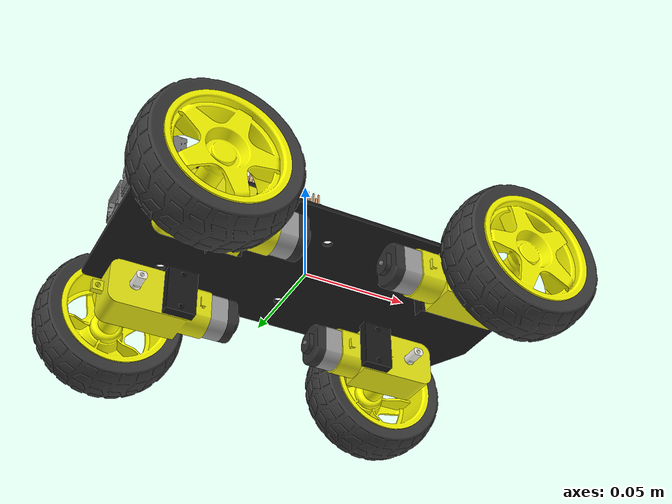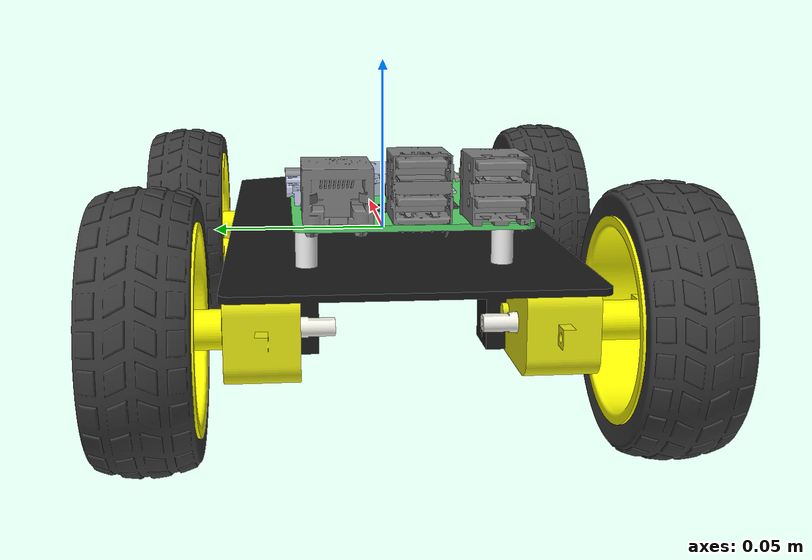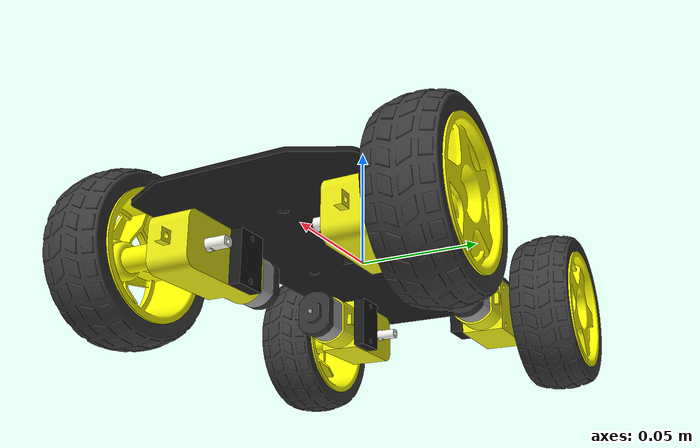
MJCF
<!-- Generated using Fusion2Mujoco v1.0 -->
<!-- https://github.com/jgillick/Fusion2Mujoco -->
<mujoco model="Freenove4WD">
    <compiler angle="radian" />
    <default>
        <mesh scale="0.001 0.001 0.001" />
        <geom contype="0" conaffinity="0" group="2" />
        <default class="collision">
            <geom contype="1" conaffinity="1" group="3" pos="0 0 0" mass="0.0" />
        </default>
    </default>
    <custom>
        <numeric name="ground_offset" data="0.0457855" />
    </custom>
    <asset>
        <mesh name="MainPCB_visual" file="meshes/MainPCB/visual.stl" />
        <mesh name="MainPCB_collision00" file="meshes/MainPCB/collision00.stl" />
        <mesh name="motor_visual" file="meshes/motor/visual.stl" />
        <mesh name="gearbox_visual" file="meshes/gearbox/visual.stl" />
        <mesh name="gearbox_collision00" file="meshes/gearbox/collision00.stl" />
        <mesh name="motor_bottom_visual" file="meshes/motor_bottom/visual.stl" />
        <mesh name="axel_visual" file="meshes/axel/visual.stl" />
        <mesh name="tire_visual" file="meshes/tire/visual.stl" />
        <mesh name="tire_collision00" file="meshes/tire/collision00.stl" />
        <mesh name="tire_collision01" file="meshes/tire/collision01.stl" />
        <mesh name="tire_collision02" file="meshes/tire/collision02.stl" />
        <mesh name="tire_collision03" file="meshes/tire/collision03.stl" />
        <mesh name="wheel_hub_visual" file="meshes/wheel_hub/visual.stl" />
        <mesh name="wheel_hub_collision00" file="meshes/wheel_hub/collision00.stl" />
        <mesh name="PiSpacers_visual" file="meshes/PiSpacers/visual.stl" />
        <mesh name="servo_visual" file="meshes/servo/visual.stl" />
        <mesh name="baseplate_visual" file="meshes/baseplate/visual.stl" />
        <mesh name="vertical_plate_visual" file="meshes/vertical_plate/visual.stl" />
        <mesh name="horizontal_plate_visual" file="meshes/horizontal_plate/visual.stl" />
        <mesh name="camera_visual" file="meshes/camera/visual.stl" />
        <mesh name="Ultrasonic_HC-SR04_PCB_visual" file="meshes/Ultrasonic_HC-SR04_PCB/visual.stl" />
        <mesh name="Ultrasonic_Can_visual" file="meshes/Ultrasonic_Can/visual.stl" />
        <mesh name="servo_horn_visual" file="meshes/servo_horn/visual.stl" />
        <mesh name="headplate_rear_visual" file="meshes/headplate_rear/visual.stl" />
        <mesh name="headplate_front_visual" file="meshes/headplate_front/visual.stl" />
        <mesh name="headplate_front_collision00" file="meshes/headplate_front/collision00.stl" />
        <mesh name="servo2_holder_visual" file="meshes/servo2_holder/visual.stl" />
        <mesh name="headplate_spacer_visual" file="meshes/headplate_spacer/visual.stl" />
        <mesh name="PLATE_RASPBERRY_PI_5_visual" file="meshes/PLATE_RASPBERRY_PI_5/visual.stl" />
        <mesh name="METAL_PLATE._visual" file="meshes/METAL_PLATE./visual.stl" />
        <mesh name="USB_Ethernet_visual" file="meshes/USB_Ethernet/visual.stl" />
        <mesh name="FEMALE_MICRO_HDMI_CONNECTOR_visual" file="meshes/FEMALE_MICRO_HDMI_CONNECTOR/visual.stl" />
        <mesh name="FEMALE_USB_CONNECTOR_visual" file="meshes/FEMALE_USB_CONNECTOR/visual.stl" />
        <mesh name="3.0_PIN_HEADER_10_visual" file="meshes/3.0_PIN_HEADER_10/visual.stl" />
        <mesh name="9FD77_D9WHV_visual" file="meshes/9FD77_D9WHV/visual.stl" />
        <mesh name="GIGABIT_ETHERNET_TRANSCEIVER_visual" file="meshes/GIGABIT_ETHERNET_TRANSCEIVER/visual.stl" />
        <mesh name="RP1_CO_CONTROLLER_visual" file="meshes/RP1_CO_CONTROLLER/visual.stl" />
        <mesh name="BROADCOM_1_visual" file="meshes/BROADCOM_1/visual.stl" />
        <mesh name="MxL_visual" file="meshes/MxL/visual.stl" />
        <mesh name="CAMERA_DISPLAY_1_visual" file="meshes/CAMERA_DISPLAY_1/visual.stl" />
        <mesh name="BUTTON_2_visual" file="meshes/BUTTON_2/visual.stl" />
        <mesh name="CAMERA_DISPLAY_2_visual" file="meshes/CAMERA_DISPLAY_2/visual.stl" />
        <material name="MainPCB_mat" rgba="0.0980 0.0980 0.0980 1.0000" roughness="0.7071" />
        <material name="motor_mat" rgba="0.6275 0.6275 0.6275 1.0000" roughness="0.2000" />
        <material name="gearbox_mat" rgba="0.9137 0.9137 0.0706 1.0000" roughness="0.2000" />
        <material name="motor_bottom_mat" rgba="0.1961 0.1961 0.1961 1.0000" roughness="0.2000" />
        <material name="axel_mat" rgba="0.9725 0.9686 0.9294 1.0000" roughness="0.2000" />
        <material name="tire_mat" rgba="0.2275 0.2275 0.2275 1.0000" roughness="0.2000" />
        <material name="wheel_hub_mat" rgba="1.0000 1.0000 0.0000 1.0000" roughness="0.2000" />
        <material name="PiSpacers_mat" rgba="0.9608 0.9608 0.9647 1.0000" roughness="0.2646" />
        <material name="servo_mat" rgba="0.0039 0.0980 0.5765 1.0000" roughness="0.2646" />
        <material name="baseplate_mat" rgba="0.0000 0.0000 0.0000 1.0000" roughness="0.2646" />
        <material name="vertical_plate_mat" rgba="0.0000 0.0000 0.0000 1.0000" roughness="0.2646" />
        <material name="horizontal_plate_mat" rgba="0.0000 0.0000 0.0000 1.0000" roughness="0.2646" />
        <material name="camera_mat" rgba="0.1804 0.3451 0.1333 1.0000" roughness="0.2646" />
        <material name="Ultrasonic_HC-SR04_PCB_mat" rgba="0.0039 0.0980 0.5765 1.0000" roughness="0.2646" />
        <material name="Ultrasonic_Can_mat" rgba="0.6275 0.6275 0.6275 1.0000" roughness="0.2646" />
        <material name="servo_horn_mat" rgba="0.6275 0.6275 0.6275 1.0000" roughness="0.2646" />
        <material name="headplate_rear_mat" rgba="0.0000 0.0000 0.0000 1.0000" roughness="0.2646" />
        <material name="headplate_front_mat" rgba="0.0000 0.0000 0.0000 1.0000" roughness="0.2646" />
        <material name="servo2_holder_mat" rgba="0.0000 0.0000 0.0000 1.0000" roughness="0.2646" />
        <material name="headplate_spacer_mat" rgba="0.6275 0.6275 0.6275 1.0000" roughness="0.2646" />
        <material name="PLATE_RASPBERRY_PI_5_mat" rgba="0.3412 0.8392 0.4118 1.0000" roughness="0.2000" />
        <material name="METAL_PLATE._mat" rgba="0.6431 0.6157 0.6000 1.0000" roughness="0.2000" />
        <material name="USB_Ethernet_mat" rgba="0.4980 0.4980 0.4980 1.0000" roughness="0.2000" />
        <material name="FEMALE_MICRO_HDMI_CONNECTOR_mat" rgba="0.7922 0.8196 0.9333 1.0000" roughness="0.2000" />
        <material name="FEMALE_USB_CONNECTOR_mat" rgba="0.5686 0.5686 0.5882 1.0000" roughness="0.2000" />
        <material name="3.0_PIN_HEADER_10_mat" rgba="1.0000 0.7569 0.5647 1.0000" roughness="0.2000" />
        <material name="9FD77_D9WHV_mat" rgba="0.7922 0.8196 0.9333 1.0000" roughness="0.2000" />
        <material name="GIGABIT_ETHERNET_TRANSCEIVER_mat" rgba="0.2980 0.2980 0.2980 1.0000" roughness="0.2000" />
        <material name="RP1_CO_CONTROLLER_mat" rgba="0.2980 0.2980 0.2980 1.0000" roughness="0.2000" />
        <material name="BROADCOM_1_mat" rgba="0.6667 0.6980 0.7686 1.0000" roughness="0.2000" />
        <material name="MxL_mat" rgba="0.7922 0.8196 0.9333 1.0000" roughness="0.2000" />
        <material name="CAMERA_DISPLAY_1_mat" rgba="0.7922 0.8196 0.9333 1.0000" roughness="0.2000" />
        <material name="BUTTON_2_mat" rgba="0.2980 0.2980 0.2980 1.0000" roughness="0.2000" />
        <material name="CAMERA_DISPLAY_2_mat" rgba="0.7922 0.8196 0.9333 1.0000" roughness="0.2000" />
    </asset>
    <worldbody>
        <!-- Lowest point of the model is at z = -0.0457855m in this frame. -->
        <!-- Lift the model by 0.0457855m to rest it on a z=0 ground plane. -->
        <body name="MainPCB" pos="0.0 0.0 0.0" quat="1.0 0.0 0.0 0.0">
            <freejoint />
            <geom mesh="MainPCB_visual" name="MainPCB_MainPCB_visual_geom" type="mesh" pos="0 0 0" quat="1 0 0 0" material="MainPCB_mat" />
            <geom mesh="MainPCB_collision00" name="MainPCB_MainPCB_collision00_geom" type="mesh" pos="0 0 0" quat="1 0 0 0" class="collision" />
            <inertial mass="0.04969745696436134" pos="0.003940462596438171 4.8292006786886e-16 -0.0011763349216851915" fullinertia="3.3674045969796535e-05 0.0001465633094517653 0.00017757150983492432 1.42267499867892e-18 -3.968191338793067e-07 -4.792103110425506e-20" />
            <body name="TT_Motor-1_gearbox" pos="0.06975000000000005 -0.035500000000000004 -0.010750000000000004" quat="1.1102230246251482e-16 6.123233995736757e-17 -6.798155367234502e-33 1.0000000000000004">
                <geom mesh="gearbox_visual" name="TT_Motor-1_gearbox_gearbox_visual_geom" type="mesh" pos="0 0 0" quat="1 0 0 0" material="gearbox_mat" />
                <geom mesh="gearbox_collision00" name="TT_Motor-1_gearbox_gearbox_collision00_geom" type="mesh" pos="0 0 0" quat="1 0 0 0" class="collision" />
                <inertial mass="0.01575778898400723" pos="0.007647838045918707 1.2362785200822959e-05 1.2838560109171476e-18" fullinertia="1.1035802615155104e-06 2.7495869785205253e-06 2.517636816068929e-06 -6.530352080899404e-10 1.8672378778433224e-21 8.471129210020342e-22" />
                <body name="TT_Motor-1_motor" pos="0.0 0.0 0.0" quat="1.0 -1.1588236309358302e-48 0.0 -2.0198403645931934e-45">
                    <geom mesh="motor_visual" name="TT_Motor-1_motor_motor_visual_geom" type="mesh" pos="0 0 0" quat="1 0 0 0" material="motor_mat" />
                    <inertial mass="0.002505457365802741" pos="0.040581087769524064 7.106717631643122e-16 -5.288578257858985e-19" fullinertia="1.1337249067247854e-07 8.727071603245999e-08 6.066235498198957e-08 -2.0322994975865508e-20 -6.455129895597942e-24 2.4888490746281334e-36" />
                    <body name="TT_Motor-1_motor_bottom" pos="0.0 0.0 0.0" quat="1.0 -1.1588236309358302e-48 0.0 -2.0198403645931934e-45">
                        <geom mesh="motor_bottom_visual" name="TT_Motor-1_motor_bottom_motor_bottom_visual_geom" type="mesh" pos="0 0 0" quat="1 0 0 0" material="motor_bottom_mat" />
                        <inertial mass="0.0014785534866922744" pos="0.04737679915861434 -2.610931162777616e-05 8.593536034065558e-19" fullinertia="6.115472408212138e-08 4.147877758584176e-08 2.7657843116737904e-08 1.1593560654261818e-10 1.5471649280461399e-22 -1.4198016945927107e-26" />
                    </body>
                </body>
                <body name="TT_Motor-1_axel" pos="0.0 0.0 0.0" quat="1.0 -1.1588236309358302e-48 0.0 -2.0198403645931934e-45">
                    <joint type="hinge" name="TT_Motor-1_axel" axis="-2.2204460492502973e-16 1.000000000000002 2.7192621468937766e-32" pos="4.363176486776873e-17 -0.009000000000000022 5.204170427930416e-18" />
                    <geom mesh="axel_visual" name="TT_Motor-1_axel_axel_visual_geom" type="mesh" pos="0 0 0" quat="1 0 0 0" material="axel_mat" />
                    <inertial mass="0.0006461241749733425" pos="-7.007727731434003e-15 -1.5560281355484349e-30 5.551115123125869e-17" fullinertia="5.830431374187014e-08 2.0548936501902375e-09 5.84600810556203e-08 4.36006353888671e-22 1.9075994219620194e-26 -5.33953785697667e-38" />
                    <body name="Wheel-1_wheel_hub" pos="2.6645352591003756e-17 0.03949999999999996 2.220446049250313e-18" quat="0.5 -0.4999999999999996 -0.5000000000000006 -0.499999999999999">
                        <geom mesh="wheel_hub_visual" name="Wheel-1_wheel_hub_wheel_hub_visual_geom" type="mesh" pos="0 0 0" quat="1 0 0 0" material="wheel_hub_mat" />
                        <geom mesh="wheel_hub_collision00" name="Wheel-1_wheel_hub_wheel_hub_collision00_geom" type="mesh" pos="0 0 0" quat="1 0 0 0" class="collision" />
                        <inertial mass="0.011938919494955614" pos="-7.819421472543562e-09 -6.36977149885815e-09 -0.011307235755000157" fullinertia="3.1229404558114746e-06 3.1224416351565473e-06 4.85821032072987e-06 1.1158639709805023e-12 -4.956449001767603e-13 -4.454134276639007e-13" />
                        <body name="Wheel-1_tire" pos="0.0 0.0 0.0" quat="1.0 -1.1235958579290084e-45 -3.239600292441965e-48 -2.9870780960627204e-33">
                            <geom mesh="tire_visual" name="Wheel-1_tire_tire_visual_geom" type="mesh" pos="0 0 0" quat="1 0 0 0" material="tire_mat" />
                            <geom mesh="tire_collision00" name="Wheel-1_tire_tire_collision00_geom" type="mesh" pos="0 0 0" quat="1 0 0 0" class="collision" />
                            <geom mesh="tire_collision01" name="Wheel-1_tire_tire_collision01_geom" type="mesh" pos="0 0 0" quat="1 0 0 0" class="collision" />
                            <geom mesh="tire_collision02" name="Wheel-1_tire_tire_collision02_geom" type="mesh" pos="0 0 0" quat="1 0 0 0" class="collision" />
                            <geom mesh="tire_collision03" name="Wheel-1_tire_tire_collision03_geom" type="mesh" pos="0 0 0" quat="1 0 0 0" class="collision" />
                            <inertial mass="0.010748872242976432" pos="9.273393769104754e-08 5.2862387714403266e-08 -0.01250121014581524" fullinertia="6.022496836837409e-06 6.022546174471783e-06 1.052643674515779e-05 2.873002085123115e-12 -1.3900669682906549e-12 -2.0127280725037815e-12" />
                        </body>
                    </body>
                </body>
            </body>
            <body name="TT_Motor-2_gearbox" pos="-0.06975000000000003 -0.03549999999999997 -0.01125" quat="1.0000000000000002 0.0 0.0 -1.1102230246251543e-16">
                <geom mesh="gearbox_visual" name="TT_Motor-2_gearbox_gearbox_visual_geom" type="mesh" pos="0 0 0" quat="1 0 0 0" material="gearbox_mat" />
                <geom mesh="gearbox_collision00" name="TT_Motor-2_gearbox_gearbox_collision00_geom" type="mesh" pos="0 0 0" quat="1 0 0 0" class="collision" />
                <inertial mass="0.01575778898400723" pos="0.007647838045918702 1.236278520082295e-05 2.220446049250313e-18" fullinertia="1.1035802615155023e-06 2.7495869785205084e-06 2.5176368160689154e-06 -6.530352080831631e-10 -1.8807909613156567e-37 8.470329472543015e-22" />
                <body name="TT_Motor-2_motor" pos="0.0 -4.440892098500626e-18 0.0" quat="1.0 0.0 0.0 -4.598010586065806e-46">
                    <geom mesh="motor_visual" name="TT_Motor-2_motor_motor_visual_geom" type="mesh" pos="0 0 0" quat="1 0 0 0" material="motor_mat" />
                    <inertial mass="0.002505457365802741" pos="0.04058108776952402 7.017899789673106e-16 0.0" fullinertia="1.1337249067247795e-07 8.727071603245988e-08 6.06623549819955e-08 -1.9475962028611178e-20 0.0 0.0" />
                    <body name="TT_Motor-2_motor_bottom" pos="0.0 -4.440892098500626e-18 0.0" quat="1.0 0.0 0.0 -4.598010586065806e-46">
                        <geom mesh="motor_bottom_visual" name="TT_Motor-2_motor_bottom_motor_bottom_visual_geom" type="mesh" pos="0 0 0" quat="1 0 0 0" material="motor_bottom_mat" />
                        <inertial mass="0.0014785534866922744" pos="0.047376799158614265 -2.610931162777614e-05 0.0" fullinertia="6.11547240821213e-08 4.147877758584063e-08 2.7657843116741715e-08 1.1593560654261802e-10 1.058791184067877e-22 -1.0587911840678766e-22" />
                    </body>
                </body>
                <body name="TT_Motor-2_axel" pos="0.0 -4.440892098500626e-18 0.0" quat="1.0 0.0 0.0 -4.598010586065806e-46">
                    <joint type="hinge" name="TT_Motor-2_axel" axis="-2.2204460492503091e-16 1.0000000000000013 0.0" pos="2.9753977059954234e-17 -0.009000000000000041 0.0" />
                    <geom mesh="axel_visual" name="TT_Motor-2_axel_axel_visual_geom" type="mesh" pos="0 0 0" quat="1 0 0 0" material="axel_mat" />
                    <inertial mass="0.0006461241749733425" pos="-7.016609515630999e-15 4.440892098499074e-18 5.551115123125783e-17" fullinertia="5.8304313741869957e-08 2.054893650188541e-09 5.8460081055618603e-08 2.2424811707509513e-22 1.0587911840678768e-22 -5.293955920339382e-23" />
                    <body name="Wheel-2_wheel_hub" pos="-8.881784197001253e-18 -0.03949999999999999 -4.440892098500626e-18" quat="0.5 0.5 0.5000000000000007 -0.49999999999999933">
                        <geom mesh="wheel_hub_visual" name="Wheel-2_wheel_hub_wheel_hub_visual_geom" type="mesh" pos="0 0 0" quat="1 0 0 0" material="wheel_hub_mat" />
                        <geom mesh="wheel_hub_collision00" name="Wheel-2_wheel_hub_wheel_hub_collision00_geom" type="mesh" pos="0 0 0" quat="1 0 0 0" class="collision" />
                        <inertial mass="0.011938919494955614" pos="-7.819421472543565e-09 -6.369771494997785e-09 -0.01130723575500016" fullinertia="3.1229404558114763e-06 3.1224416351565337e-06 4.858210320729867e-06 1.1158639709804411e-12 -4.956449035648929e-13 -4.4541345399811886e-13" />
                        <body name="Wheel-2_tire" pos="0.0 0.0 -8.881784197001253e-18" quat="1.0 5.020340165244845e-46 -7.184391540726713e-48 2.351898550868226e-33">
                            <geom mesh="tire_visual" name="Wheel-2_tire_tire_visual_geom" type="mesh" pos="0 0 0" quat="1 0 0 0" material="tire_mat" />
                            <geom mesh="tire_collision00" name="Wheel-2_tire_tire_collision00_geom" type="mesh" pos="0 0 0" quat="1 0 0 0" class="collision" />
                            <geom mesh="tire_collision01" name="Wheel-2_tire_tire_collision01_geom" type="mesh" pos="0 0 0" quat="1 0 0 0" class="collision" />
                            <geom mesh="tire_collision02" name="Wheel-2_tire_tire_collision02_geom" type="mesh" pos="0 0 0" quat="1 0 0 0" class="collision" />
                            <geom mesh="tire_collision03" name="Wheel-2_tire_tire_collision03_geom" type="mesh" pos="0 0 0" quat="1 0 0 0" class="collision" />
                            <inertial mass="0.010748872242976432" pos="9.273393769104757e-08 5.286238769996982e-08 -0.012501210145815253" fullinertia="6.022496836837397e-06 6.022546174471783e-06 1.0526436745157787e-05 2.873002086817187e-12 -1.39006696913769e-12 -2.012728077279916e-12" />
                        </body>
                    </body>
                </body>
            </body>
            <body name="TT_Motor-3_gearbox" pos="0.06975000000000002 0.03550000000000001 -0.011250000000000003" quat="1.1102230246251565e-16 6.123233995736766e-17 -6.798155367234455e-33 1.0">
                <geom mesh="gearbox_visual" name="TT_Motor-3_gearbox_gearbox_visual_geom" type="mesh" pos="0 0 0" quat="1 0 0 0" material="gearbox_mat" />
                <geom mesh="gearbox_collision00" name="TT_Motor-3_gearbox_gearbox_collision00_geom" type="mesh" pos="0 0 0" quat="1 0 0 0" class="collision" />
                <inertial mass="0.01575778898400723" pos="0.007647838045918674 1.2362785200822933e-05 1.2838560109171478e-18" fullinertia="1.1035802615154994e-06 2.7495869785204872e-06 2.5176368160689154e-06 -6.530352080831615e-10 1.7317198333471756e-22 7.997374773095694e-26" />
                <body name="TT_Motor-3_motor" pos="0.0 0.0 0.0" quat="1.0 0.0 0.0 0.0">
                    <geom mesh="motor_visual" name="TT_Motor-3_motor_motor_visual_geom" type="mesh" pos="0 0 0" quat="1 0 0 0" material="motor_mat" />
                    <inertial mass="0.002505457365802741" pos="0.04058108776952391 7.017899789673097e-16 -5.288578257859001e-19" fullinertia="1.1337249067247724e-07 8.727071603245964e-08 6.066235498200651e-08 -1.9899478502238274e-20 9.942398851119172e-23 2.1175823681357753e-22" />
                    <body name="TT_Motor-3_motor_bottom" pos="0.0 0.0 0.0" quat="1.0 0.0 0.0 0.0">
                        <geom mesh="motor_bottom_visual" name="TT_Motor-3_motor_bottom_motor_bottom_visual_geom" type="mesh" pos="0 0 0" quat="1 0 0 0" material="motor_bottom_mat" />
                        <inertial mass="0.0014785534866922744" pos="0.04737679915861415 -2.6109311627776105e-05 8.593536034065558e-19" fullinertia="6.115472408212156e-08 4.1478777585841373e-08 2.7657843116751456e-08 1.1593560654282947e-10 1.5471649280461528e-22 -1.4198016945953042e-26" />
                    </body>
                </body>
                <body name="TT_Motor-3_axel" pos="0.0 0.0 0.0" quat="1.0 0.0 0.0 0.0">
                    <joint type="hinge" name="TT_Motor-3_axel" axis="-2.220446049250313e-16 1.0 2.719262146893782e-32" pos="1.5876189252139734e-17 -0.008999999999999987 3.4694469519536123e-18" />
                    <geom mesh="axel_visual" name="TT_Motor-3_axel_axel_visual_geom" type="mesh" pos="0 0 0" quat="1 0 0 0" material="axel_mat" />
                    <inertial mass="0.0006461241749733425" pos="-7.0077277314339886e-15 -1.5560281355484459e-30 5.551115123125869e-17" fullinertia="5.830431374186927e-08 2.0548936501898057e-09 5.84600810556203e-08 2.242481170750942e-22 1.9075994219686315e-26 5.293955920339374e-23" />
                    <body name="Wheel-3_wheel_hub" pos="1.7763568394002505e-17 -0.039499999999999924 -6.661338147750939e-18" quat="0.5 0.5000000000000002 -0.5000000000000002 0.5">
                        <geom mesh="wheel_hub_visual" name="Wheel-3_wheel_hub_wheel_hub_visual_geom" type="mesh" pos="0 0 0" quat="1 0 0 0" material="wheel_hub_mat" />
                        <geom mesh="wheel_hub_collision00" name="Wheel-3_wheel_hub_wheel_hub_collision00_geom" type="mesh" pos="0 0 0" quat="1 0 0 0" class="collision" />
                        <inertial mass="0.011938919494955614" pos="-7.819421472543557e-09 -6.369771507739932e-09 -0.011307235755000141" fullinertia="3.1229404558114704e-06 3.12244163515652e-06 4.858210320729885e-06 1.1158639726745064e-12 -4.956449052589574e-13 -4.454134344401639e-13" />
                        <body name="Wheel-3_tire" pos="0.0 0.0 0.0" quat="1.0 -4.766246943736055e-48 5.131708243377006e-48 -1.2703590903905792e-33">
                            <geom mesh="tire_visual" name="Wheel-3_tire_tire_visual_geom" type="mesh" pos="0 0 0" quat="1 0 0 0" material="tire_mat" />
                            <geom mesh="tire_collision00" name="Wheel-3_tire_tire_collision00_geom" type="mesh" pos="0 0 0" quat="1 0 0 0" class="collision" />
                            <geom mesh="tire_collision01" name="Wheel-3_tire_tire_collision01_geom" type="mesh" pos="0 0 0" quat="1 0 0 0" class="collision" />
                            <geom mesh="tire_collision02" name="Wheel-3_tire_tire_collision02_geom" type="mesh" pos="0 0 0" quat="1 0 0 0" class="collision" />
                            <geom mesh="tire_collision03" name="Wheel-3_tire_tire_collision03_geom" type="mesh" pos="0 0 0" quat="1 0 0 0" class="collision" />
                            <inertial mass="0.010748872242976432" pos="9.273393769104747e-08 5.286238770552147e-08 -0.012501210145815223" fullinertia="6.022496836837347e-06 6.02254617447179e-06 1.0526436745157757e-05 2.8730020851231195e-12 -1.3900669691376864e-12 -2.01272807250378e-12" />
                        </body>
                    </body>
                </body>
            </body>
            <body name="TT_Motor-4_gearbox" pos="-0.06975000000000009 0.035500000000000045 -0.01125" quat="1.0000000000000004 0.0 0.0 -1.1102230246251595e-16">
                <geom mesh="gearbox_visual" name="TT_Motor-4_gearbox_gearbox_visual_geom" type="mesh" pos="0 0 0" quat="1 0 0 0" material="gearbox_mat" />
                <geom mesh="gearbox_collision00" name="TT_Motor-4_gearbox_gearbox_collision00_geom" type="mesh" pos="0 0 0" quat="1 0 0 0" class="collision" />
                <inertial mass="0.01575778898400723" pos="0.007647838045918707 1.2362785200822959e-05 2.220446049250313e-18" fullinertia="1.1035802615155171e-06 2.749586978520512e-06 2.517636816068929e-06 -6.530352080763879e-10 1.880790961315666e-37 -8.47032947254302e-22" />
                <body name="TT_Motor-4_motor" pos="0.0 0.0 0.0" quat="1.0 0.0 0.0 2.4632199568209675e-46">
                    <geom mesh="motor_visual" name="TT_Motor-4_motor_motor_visual_geom" type="mesh" pos="0 0 0" quat="1 0 0 0" material="motor_mat" />
                    <inertial mass="0.002505457365802741" pos="0.040581087769524064 7.062308710658117e-16 0.0" fullinertia="1.1337249067247854e-07 8.727071603245999e-08 6.066235498199042e-08 -2.0322994975865508e-20 1.0587911840678775e-22 2.3509887016445823e-38" />
                    <body name="TT_Motor-4_motor_bottom" pos="0.0 0.0 0.0" quat="1.0 0.0 0.0 2.4632199568209675e-46">
                        <geom mesh="motor_bottom_visual" name="TT_Motor-4_motor_bottom_motor_bottom_visual_geom" type="mesh" pos="0 0 0" quat="1 0 0 0" material="motor_bottom_mat" />
                        <inertial mass="0.0014785534866922744" pos="0.04737679915861434 -2.61093116277806e-05 0.0" fullinertia="6.11547240821218e-08 4.147877758584197e-08 2.765784311673748e-08 1.1593560654282993e-10 1.5881867761018162e-22 1.058791184067878e-22" />
                    </body>
                </body>
                <body name="TT_Motor-4_axel" pos="0.0 0.0 0.0" quat="1.0 0.0 0.0 2.4632199568209675e-46">
                    <joint type="hinge" name="TT_Motor-4_axel" axis="-2.22044604925032e-16 1.000000000000002 0.0" pos="8.526512829121221e-17 -0.009000000000000064 0.0" />
                    <geom mesh="axel_visual" name="TT_Motor-4_axel_axel_visual_geom" type="mesh" pos="0 0 0" quat="1 0 0 0" material="axel_mat" />
                    <inertial mass="0.0006461241749733425" pos="-7.016609515631004e-15 4.440892098499077e-18 5.551115123125783e-17" fullinertia="5.830431374186972e-08 2.0548936501893905e-09 5.846008105561945e-08 1.2489880261519289e-23 -1.0587911840678775e-22 -2.3509887016445823e-38" />
                    <body name="Wheel-4_wheel_hub" pos="2.6645352591003756e-17 0.03949999999999995 0.0" quat="0.5 -0.4999999999999987 0.49999999999999967 0.499999999999999">
                        <geom mesh="wheel_hub_visual" name="Wheel-4_wheel_hub_wheel_hub_visual_geom" type="mesh" pos="0 0 0" quat="1 0 0 0" material="wheel_hub_mat" />
                        <geom mesh="wheel_hub_collision00" name="Wheel-4_wheel_hub_wheel_hub_collision00_geom" type="mesh" pos="0 0 0" quat="1 0 0 0" class="collision" />
                        <inertial mass="0.011938919494955614" pos="-7.819421472543549e-09 -6.369771494997787e-09 -0.01130723575500012" fullinertia="3.1229404558115042e-06 3.1224416351565405e-06 4.85821032072984e-06 1.1158639709805e-12 -4.956449035648908e-13 -4.4541343366932737e-13" />
                        <body name="Wheel-4_tire" pos="0.0 0.0 0.0" quat="1.0 8.121106999615741e-47 7.247281110916916e-49 -1.9055386355858462e-33">
                            <geom mesh="tire_visual" name="Wheel-4_tire_tire_visual_geom" type="mesh" pos="0 0 0" quat="1 0 0 0" material="tire_mat" />
                            <geom mesh="tire_collision00" name="Wheel-4_tire_tire_collision00_geom" type="mesh" pos="0 0 0" quat="1 0 0 0" class="collision" />
                            <geom mesh="tire_collision01" name="Wheel-4_tire_tire_collision01_geom" type="mesh" pos="0 0 0" quat="1 0 0 0" class="collision" />
                            <geom mesh="tire_collision02" name="Wheel-4_tire_tire_collision02_geom" type="mesh" pos="0 0 0" quat="1 0 0 0" class="collision" />
                            <geom mesh="tire_collision03" name="Wheel-4_tire_tire_collision03_geom" type="mesh" pos="0 0 0" quat="1 0 0 0" class="collision" />
                            <inertial mass="0.010748872242976432" pos="9.273393769104737e-08 5.286238769996983e-08 -0.0125012101458152" fullinertia="6.022496836837347e-06 6.02254617447179e-06 1.0526436745157706e-05 2.8730020851231094e-12 -1.3900669691376844e-12 -2.012728077279912e-12" />
                        </body>
                    </body>
                </body>
            </body>
            <body name="PiSpacers" pos="0.005750000000000002 -3.944304526105059e-33 -2.220446049250313e-18" quat="1.0 -8.758115402030107e-47 -7.778384726050997e-48 0.0">
                <geom mesh="PiSpacers_visual" name="PiSpacers_PiSpacers_visual_geom" type="mesh" pos="0 0 0" quat="1 0 0 0" material="PiSpacers_mat" />
                <inertial mass="0.003898153658927287" pos="-0.036641000000614266 2.2250578450185823e-18 0.007967499999999999" fullinertia="2.402576241961358e-06 3.341056736900983e-06 5.6415492840461436e-06 1.083429353176424e-20 -1.0587911840678754e-21 2.5738959574805848e-23" />
                <body name="PLATE_RASPBERRY_PI_5" pos="-0.0466410000000001 1.2684298056342414e-16 0.014484999999999451" quat="-4.215038172160215e-17 -6.9829626776862746e-15 9.154897966759079e-29 1.0000000000000009">
                    <geom mesh="PLATE_RASPBERRY_PI_5_visual" name="PLATE_RASPBERRY_PI_5_PLATE_RASPBERRY_PI_5_visual_geom" type="mesh" pos="0 0 0" quat="1 0 0 0" material="PLATE_RASPBERRY_PI_5_mat" />
                    <inertial mass="0.053506682002526784" pos="0.00010652334843020196 -0.00016063092176509905 0.0007221750982718499" fullinertia="1.3786602810250358e-05 3.215227584976413e-05 4.591993338438278e-05 -9.367198711154732e-10 -1.547749195200496e-09 4.129174139542261e-11" />
                    <body name="METAL_PLATE." pos="-0.03000000000000002 0.014200000000000011 0.0028500000000000014" quat="1.0 1.076624693464876e-44 2.991188361583108e-31 -7.415191002309163e-29">
                        <geom mesh="METAL_PLATE._visual" name="METAL_PLATE._METAL_PLATE._visual_geom" type="mesh" pos="0 0 0" quat="1 0 0 0" material="METAL_PLATE._mat" />
                        <inertial mass="0.0003039761641170146" pos="2.3796297990969528e-17 -1.5543122344752273e-17 -0.00011398009497838341" fullinertia="5.4507561841429645e-09 3.764531787486773e-09 9.11614753619922e-09 6.826986376860397e-24 2.160131188362098e-23 -1.3234889800847666e-23" />
                    </body>
                    <body name="USB_Ethernet" pos="0.0455 -0.017799999999999993 0.008374999999999995" quat="0.5 0.5 0.5 0.5000000000000001">
                        <geom mesh="USB_Ethernet_visual" name="USB_Ethernet_USB_Ethernet_visual_geom" type="mesh" pos="0 0 0" quat="1 0 0 0" material="USB_Ethernet_mat" />
                        <inertial mass="0.068756787947681" pos="0.01669700808964882 0.0006976232708880569 -0.010863236937883372" fullinertia="3.2881594373065373e-06 1.914376396726221e-05 1.8540842822588273e-05 -5.112883537176981e-07 -1.079764252952329e-06 -8.138773694171238e-08" />
                    </body>
                    <body name="FEMALE_MICRO_HDMI_CONNECTOR-1" pos="-0.01670000000000036 -0.02149999999999972 0.002899999999968339" quat="0.7071067811865512 0.7071067811865438 -9.875400524329061e-15 -5.299184507199962e-29">
                        <geom mesh="FEMALE_MICRO_HDMI_CONNECTOR_visual" name="FEMALE_MICRO_HDMI_CONNECTOR-1_FEMALE_MICRO_HDMI_CONNECTOR_visual_geom" type="mesh" pos="0 0 0" quat="1 0 0 0" material="FEMALE_MICRO_HDMI_CONNECTOR_mat" />
                        <inertial mass="0.0005084888358175555" pos="-1.0164323008461442e-06 0.00015843348201624227 0.0032395883923271034" fullinertia="2.0562656442686804e-09 3.6860893988674097e-09 2.4374015859389904e-09 -3.1196541272515146e-13 1.6182154589149828e-13 1.0956364207642061e-10" />
                    </body>
                    <body name="FEMALE_MICRO_HDMI_CONNECTOR-2" pos="-0.003300000000000356 -0.02149999999999991 0.0028999999999685232" quat="0.7071067811865512 0.7071067811865438 -9.875400524329061e-15 -5.299184507199962e-29">
                        <geom mesh="FEMALE_MICRO_HDMI_CONNECTOR_visual" name="FEMALE_MICRO_HDMI_CONNECTOR-2_FEMALE_MICRO_HDMI_CONNECTOR_visual_geom" type="mesh" pos="0 0 0" quat="1 0 0 0" material="FEMALE_MICRO_HDMI_CONNECTOR_mat" />
                        <inertial mass="0.0005084888358175555" pos="-1.0164323008461442e-06 0.00015843348201624227 0.0032395883923271034" fullinertia="2.0562656442685746e-09 3.6860893988675156e-09 2.437401585939202e-09 -3.119654128045608e-13 1.6182154578561916e-13 1.0956364207644708e-10" />
                    </body>
                    <body name="FEMALE_USB_CONNECTOR" pos="-0.03130000000000037 -0.021579999999999513 0.003029999999999797" quat="0.7071067811865512 0.7071067811865438 -9.875400524329061e-15 -5.299184507199962e-29">
                        <geom mesh="FEMALE_USB_CONNECTOR_visual" name="FEMALE_USB_CONNECTOR_FEMALE_USB_CONNECTOR_visual_geom" type="mesh" pos="0 0 0" quat="1 0 0 0" material="FEMALE_USB_CONNECTOR_mat" />
                        <inertial mass="0.0010186253515518948" pos="-6.41576458184468e-07 1.2851641310739828e-05 0.0028189870976713196" fullinertia="5.375937121199247e-09 1.0870011983507297e-08 7.196365547384996e-09 -3.121656872931086e-14 1.8997992937780985e-12 -3.6708994527618197e-11" />
                    </body>
                    <body name="3.0_PIN_HEADER_10" pos="-0.032860000000000035 0.024500000000000022 0.003949999999999996" quat="0.7071067811865481 2.7093882137398477e-17 -4.4358296965938615e-17 0.7071067811865469">
                        <geom mesh="3.0_PIN_HEADER_10_visual" name="3.0_PIN_HEADER_10_3.0_PIN_HEADER_10_visual_geom" type="mesh" pos="0 0 0" quat="1 0 0 0" material="3.0_PIN_HEADER_10_mat" />
                        <inertial mass="0.00539346027890533" pos="2.488040100205104e-19 -0.022860000000000057 -0.0008098629513017616" fullinertia="1.1794007698368065e-06 3.012099825510699e-08 1.1710821768193403e-06 -6.051162516935118e-22 -4.243570561445159e-22 6.60128385565836e-22" />
                    </body>
                    <body name="9FD77_D9WHV" pos="-0.009250000000000026 0.011000000000000003 0.0014500000000000047" quat="0.7071067811865476 4.504730982808397e-17 -5.639812217720087e-17 -0.7071067811865475">
                        <geom mesh="9FD77_D9WHV_visual" name="9FD77_D9WHV_9FD77_D9WHV_visual_geom" type="mesh" pos="0 0 0" quat="1 0 0 0" material="9FD77_D9WHV_mat" />
                        <inertial mass="0.0009088498134760561" pos="-1.3395471931731954e-06 -7.285014614765954e-07 0.0003992539309831576" fullinertia="1.5975390445147512e-08 7.627206708396327e-09 2.350599270818064e-08 -3.2988596274813315e-12 4.7410101646005e-13 2.5801459541172896e-13" />
                    </body>
                    <body name="GIGABIT_ETHERNET_TRANSCEIVER" pos="0.021531526527127233 -0.004557271098903822 0.001449999999999998" quat="0.9238795325112865 2.6846241430325305e-30 2.1881872453657565e-30 -0.38268343236509056">
                        <geom mesh="GIGABIT_ETHERNET_TRANSCEIVER_visual" name="GIGABIT_ETHERNET_TRANSCEIVER_GIGABIT_ETHERNET_TRANSCEIVER_visual_geom" type="mesh" pos="0 0 0" quat="1 0 0 0" material="GIGABIT_ETHERNET_TRANSCEIVER_mat" />
                        <inertial mass="0.00029995062974476415" pos="4.81537806707231e-07 9.754389524625059e-07 0.0004675534024376073" fullinertia="9.128949074991554e-10 9.134955790123768e-10 1.7698686902747856e-09 2.9962152770662085e-13 -7.553436797512548e-14 -1.5705846870154118e-13" />
                    </body>
                    <body name="RP1_CO_CONTROLLER" pos="0.01589999999999998 0.006950000000000011 0.0014500000000000068" quat="0.7071067811865476 -1.9198439515309122e-16 -6.80905382102853e-17 -0.7071067811865475">
                        <geom mesh="RP1_CO_CONTROLLER_visual" name="RP1_CO_CONTROLLER_RP1_CO_CONTROLLER_visual_geom" type="mesh" pos="0 0 0" quat="1 0 0 0" material="RP1_CO_CONTROLLER_mat" />
                        <inertial mass="0.0006777646982030709" pos="-1.374461291512203e-06 9.194317014717758e-07 0.00029983194886100314" fullinertia="8.151913792951794e-09 8.152080624080794e-09 1.6263372226990368e-08 -1.2976234130666761e-12 2.2426514694343404e-13 -1.3399559581770313e-13" />
                    </body>
                    <body name="BROADCOM_1" pos="-0.0008250000000000224 -0.005304999575896018 0.0046299999713854964" quat="-0.4999999999999999 -0.5 0.5 0.5000000000000001">
                        <geom mesh="BROADCOM_1_visual" name="BROADCOM_1_BROADCOM_1_visual_geom" type="mesh" pos="0 0 0" quat="1 0 0 0" material="BROADCOM_1_mat" />
                        <inertial mass="0.003978153398858382" pos="1.3093013662177758e-06 -0.002100980642647873 0.00849856297215054" fullinertia="1.1166658412883042e-07 2.004414073602828e-07 9.49931457185613e-08 -2.9850943644320337e-12 -3.639382316025364e-11 5.075215951976082e-12" />
                    </body>
                    <body name="MxL" pos="-0.03124000000000002 -0.012879999999999996 0.0014500000000000068" quat="0.7071067811865476 -4.669725206797032e-17 -1.4926356009743037e-17 -0.7071067811865475">
                        <geom mesh="MxL_visual" name="MxL_MxL_visual_geom" type="mesh" pos="0 0 0" quat="1 0 0 0" material="MxL_mat" />
                        <inertial mass="0.0001423979902795981" pos="4.725995465193712e-07 2.744450233581487e-07 0.00024652394714314523" fullinertia="4.3029041590238307e-10 4.3106209915961914e-10 8.553181276967777e-10 5.712394841064352e-14 -1.6610143211562348e-14 -1.0619270796349183e-14" />
                    </body>
                    <body name="CAMERA_DISPLAY_1" pos="-0.04585160398483278 0.020082103347778334 -0.0001504979610443047" quat="1.0 1.076624693464876e-44 2.991188361583108e-31 -7.415191002309163e-29">
                        <geom mesh="CAMERA_DISPLAY_1_visual" name="CAMERA_DISPLAY_1_CAMERA_DISPLAY_1_visual_geom" type="mesh" pos="0 0 0" quat="1 0 0 0" material="CAMERA_DISPLAY_1_mat" />
                        <inertial mass="0.0008629563230236492" pos="0.006418856515425381 -0.018280214070425606 0.003708614135685219" fullinertia="1.2716847695126053e-08 1.4996969331886666e-09 1.2162374235629405e-08 -6.133969092850573e-13 9.353564894615261e-11 1.6015854065663029e-12" />
                    </body>
                    <body name="BUTTON_2" pos="-0.041000000000000016 -0.00960063465279573 0.0014500000000000068" quat="0.7071067811865476 -1.5808228510950102e-17 -2.6558428428518325e-18 -0.7071067811865475">
                        <geom mesh="BUTTON_2_visual" name="BUTTON_2_BUTTON_2_visual_geom" type="mesh" pos="0 0 0" quat="1 0 0 0" material="BUTTON_2_mat" />
                        <inertial mass="0.0003277856056303155" pos="3.602712123715901e-15 -8.015799541761372e-05 0.0017466995719191247" fullinertia="5.125408996498952e-10 8.871771683857118e-10 7.454365300856935e-10 1.591800186163768e-21 1.8529439872135648e-22 -1.5571744702323425e-12" />
                    </body>
                    <body name="CAMERA_DISPLAY_2-1" pos="4.839601516721359e-05 0.0005921033477783318 -0.00015049796104431358" quat="1.0 1.076624693464876e-44 2.991188361583108e-31 -7.415191002309163e-29">
                        <geom mesh="CAMERA_DISPLAY_2_visual" name="CAMERA_DISPLAY_2-1_CAMERA_DISPLAY_2_visual_geom" type="mesh" pos="0 0 0" quat="1 0 0 0" material="CAMERA_DISPLAY_2_mat" />
                        <inertial mass="0.0010667679736946975" pos="0.006417078913657634 -0.019780049770736333 0.0037047342926384754" fullinertia="2.328872461621082e-08 1.8505476730009432e-09 2.2613688115035763e-08 -7.918232177804045e-13 1.209237298864908e-10 2.2825236610924693e-12" />
                    </body>
                    <body name="CAMERA_DISPLAY_2-2" pos="0.0062483960151672145 0.0005921033477783319 -0.00015049796104431358" quat="1.0 1.076624693464876e-44 2.991188361583108e-31 -7.415191002309163e-29">
                        <geom mesh="CAMERA_DISPLAY_2_visual" name="CAMERA_DISPLAY_2-2_CAMERA_DISPLAY_2_visual_geom" type="mesh" pos="0 0 0" quat="1 0 0 0" material="CAMERA_DISPLAY_2_mat" />
                        <inertial mass="0.0010667679736946975" pos="0.006417078913657634 -0.019780049770736333 0.0037047342926384754" fullinertia="2.3288724616211032e-08 1.8505476730022137e-09 2.261368811503661e-08 -7.91823217356888e-13 1.2092372988659667e-10 2.2825236610395298e-12" />
                    </body>
                </body>
            </body>
        </body>
    </worldbody>
</mujoco>
